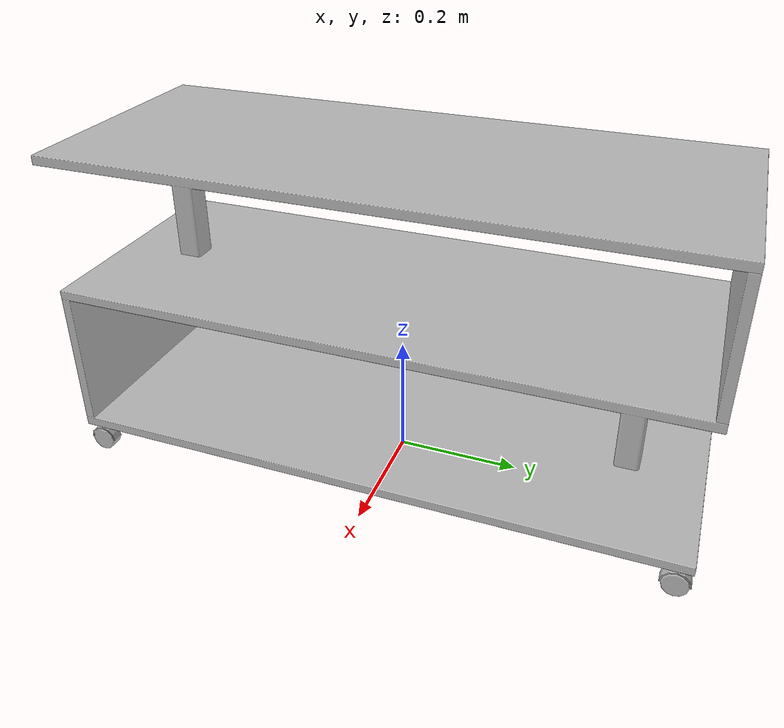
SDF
<?xml version='1.0'?>
<sdf version='1.4'>
  <model name='563'>
    <pose>0 0 0 0 0 0</pose>
    <static>true</static>
    <link name='link'>
      <collision name='collision'>
        <pose>0 0 0 0 0 0</pose>
        <geometry>
          <box>
            <size>0.400208 1.00008 2</size>
          </box>
        </geometry>
      </collision>
      <visual name='visual'>
        <pose>0 0 0 0 0 0</pose>
        <geometry>
          <mesh><uri>model://563/563.dae</uri></mesh>
        </geometry>
      </visual>
    </link>
  </model>
</sdf>
